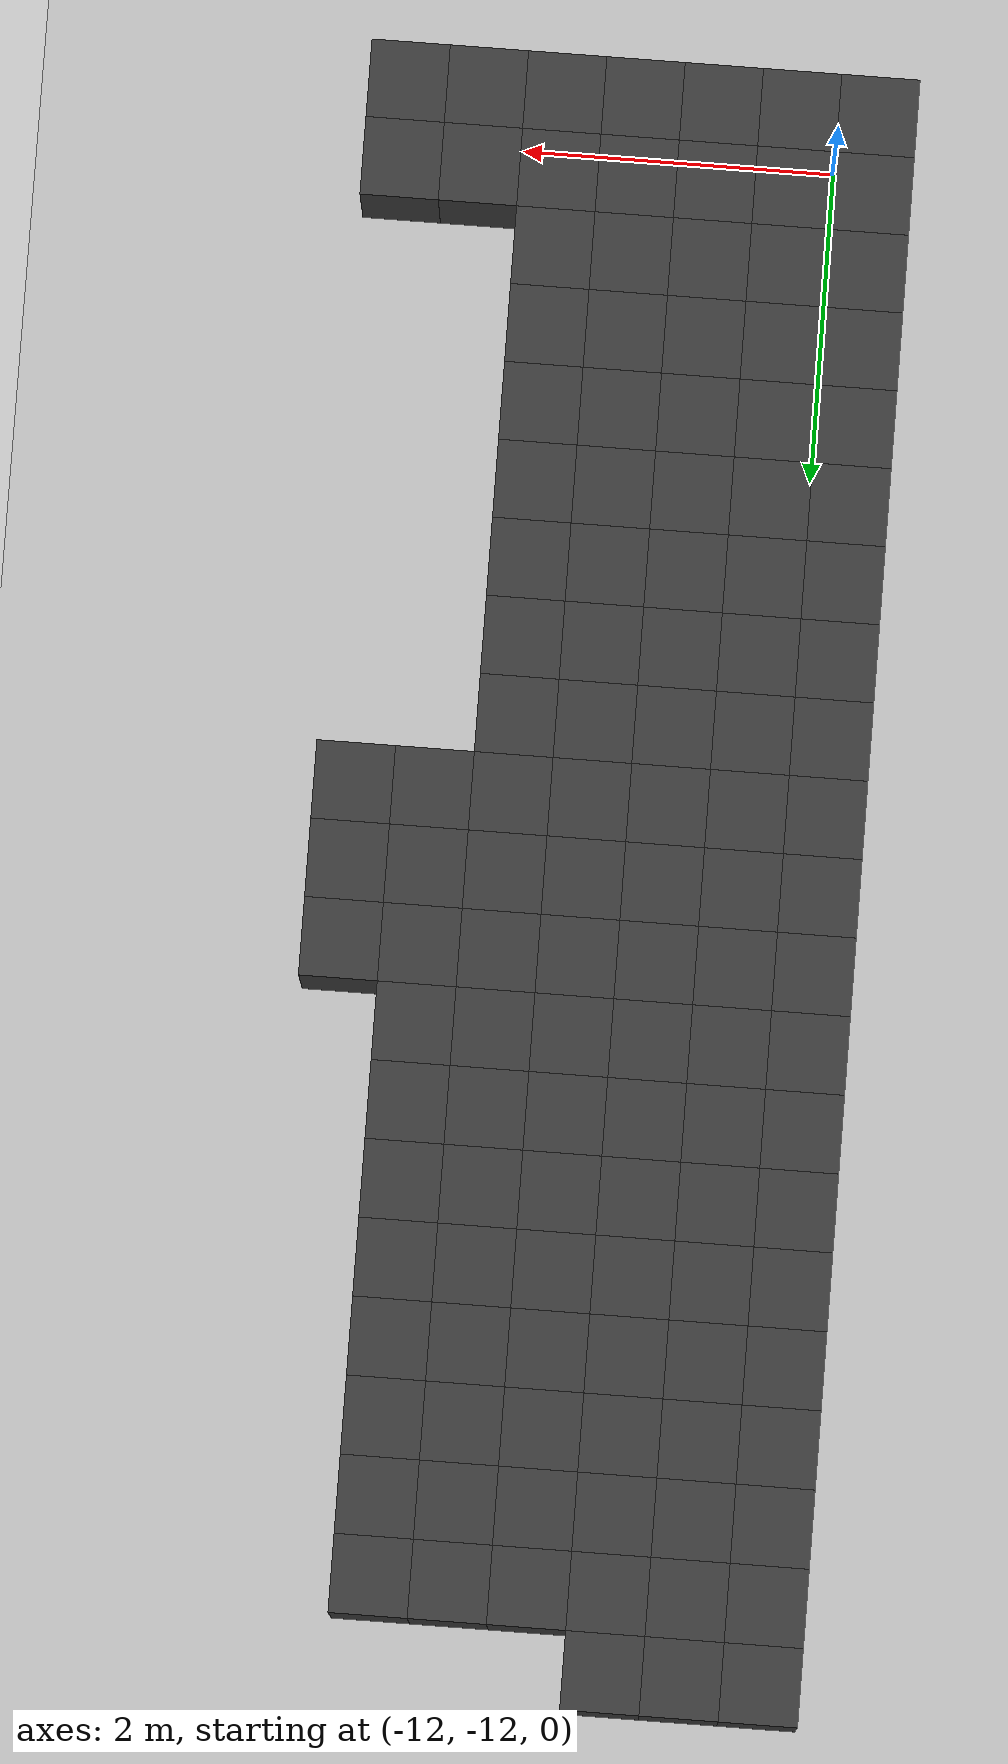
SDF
<sdf version="1.7">
 <world name="map_14706">
  <model name="ground_plane">
   <static>true</static>
   <link name="link">
    <collision name="collision">
     <geometry><plane><normal>0 0 1</normal><size>200 200</size></plane></geometry>
    </collision>
    <visual name="visual">
     <geometry><plane><normal>0 0 1</normal><size>200 200</size></plane></geometry>
     <material><ambient>0.8 0.8 0.8 1</ambient><diffuse>0.8 0.8 0.8 1</diffuse></material>
    </visual>
   </link>
  </model>
  <model name="maze_environment">
   <static>true</static>
   <link name="wall_983">
    <pose>-12.250 -2.250 0.500 0 0 0</pose>
    <collision name="col"><geometry><box><size>0.5 0.5 1.0</size></box></geometry></collision>
    <visual name="vis">
     <geometry><box><size>0.5 0.5 1.0</size></box></geometry>
     <material><ambient>0.15 0.15 0.15 1</ambient><diffuse>0.25 0.25 0.25 1</diffuse></material>
    </visual>
   </link>
   <link name="wall_984">
    <pose>-11.750 -2.250 0.500 0 0 0</pose>
    <collision name="col"><geometry><box><size>0.5 0.5 1.0</size></box></geometry></collision>
    <visual name="vis">
     <geometry><box><size>0.5 0.5 1.0</size></box></geometry>
     <material><ambient>0.15 0.15 0.15 1</ambient><diffuse>0.25 0.25 0.25 1</diffuse></material>
    </visual>
   </link>
   <link name="wall_985">
    <pose>-11.250 -2.250 0.500 0 0 0</pose>
    <collision name="col"><geometry><box><size>0.5 0.5 1.0</size></box></geometry></collision>
    <visual name="vis">
     <geometry><box><size>0.5 0.5 1.0</size></box></geometry>
     <material><ambient>0.15 0.15 0.15 1</ambient><diffuse>0.25 0.25 0.25 1</diffuse></material>
    </visual>
   </link>
   <link name="wall_1025">
    <pose>-12.250 -2.750 0.500 0 0 0</pose>
    <collision name="col"><geometry><box><size>0.5 0.5 1.0</size></box></geometry></collision>
    <visual name="vis">
     <geometry><box><size>0.5 0.5 1.0</size></box></geometry>
     <material><ambient>0.15 0.15 0.15 1</ambient><diffuse>0.25 0.25 0.25 1</diffuse></material>
    </visual>
   </link>
   <link name="wall_1026">
    <pose>-11.750 -2.750 0.500 0 0 0</pose>
    <collision name="col"><geometry><box><size>0.5 0.5 1.0</size></box></geometry></collision>
    <visual name="vis">
     <geometry><box><size>0.5 0.5 1.0</size></box></geometry>
     <material><ambient>0.15 0.15 0.15 1</ambient><diffuse>0.25 0.25 0.25 1</diffuse></material>
    </visual>
   </link>
   <link name="wall_1027">
    <pose>-11.250 -2.750 0.500 0 0 0</pose>
    <collision name="col"><geometry><box><size>0.5 0.5 1.0</size></box></geometry></collision>
    <visual name="vis">
     <geometry><box><size>0.5 0.5 1.0</size></box></geometry>
     <material><ambient>0.15 0.15 0.15 1</ambient><diffuse>0.25 0.25 0.25 1</diffuse></material>
    </visual>
   </link>
   <link name="wall_1028">
    <pose>-10.750 -2.750 0.500 0 0 0</pose>
    <collision name="col"><geometry><box><size>0.5 0.5 1.0</size></box></geometry></collision>
    <visual name="vis">
     <geometry><box><size>0.5 0.5 1.0</size></box></geometry>
     <material><ambient>0.15 0.15 0.15 1</ambient><diffuse>0.25 0.25 0.25 1</diffuse></material>
    </visual>
   </link>
   <link name="wall_1029">
    <pose>-10.250 -2.750 0.500 0 0 0</pose>
    <collision name="col"><geometry><box><size>0.5 0.5 1.0</size></box></geometry></collision>
    <visual name="vis">
     <geometry><box><size>0.5 0.5 1.0</size></box></geometry>
     <material><ambient>0.15 0.15 0.15 1</ambient><diffuse>0.25 0.25 0.25 1</diffuse></material>
    </visual>
   </link>
   <link name="wall_1030">
    <pose>-9.750 -2.750 0.500 0 0 0</pose>
    <collision name="col"><geometry><box><size>0.5 0.5 1.0</size></box></geometry></collision>
    <visual name="vis">
     <geometry><box><size>0.5 0.5 1.0</size></box></geometry>
     <material><ambient>0.15 0.15 0.15 1</ambient><diffuse>0.25 0.25 0.25 1</diffuse></material>
    </visual>
   </link>
   <link name="wall_1067">
    <pose>-12.250 -3.250 0.500 0 0 0</pose>
    <collision name="col"><geometry><box><size>0.5 0.5 1.0</size></box></geometry></collision>
    <visual name="vis">
     <geometry><box><size>0.5 0.5 1.0</size></box></geometry>
     <material><ambient>0.15 0.15 0.15 1</ambient><diffuse>0.25 0.25 0.25 1</diffuse></material>
    </visual>
   </link>
   <link name="wall_1068">
    <pose>-11.750 -3.250 0.500 0 0 0</pose>
    <collision name="col"><geometry><box><size>0.5 0.5 1.0</size></box></geometry></collision>
    <visual name="vis">
     <geometry><box><size>0.5 0.5 1.0</size></box></geometry>
     <material><ambient>0.15 0.15 0.15 1</ambient><diffuse>0.25 0.25 0.25 1</diffuse></material>
    </visual>
   </link>
   <link name="wall_1069">
    <pose>-11.250 -3.250 0.500 0 0 0</pose>
    <collision name="col"><geometry><box><size>0.5 0.5 1.0</size></box></geometry></collision>
    <visual name="vis">
     <geometry><box><size>0.5 0.5 1.0</size></box></geometry>
     <material><ambient>0.15 0.15 0.15 1</ambient><diffuse>0.25 0.25 0.25 1</diffuse></material>
    </visual>
   </link>
   <link name="wall_1070">
    <pose>-10.750 -3.250 0.500 0 0 0</pose>
    <collision name="col"><geometry><box><size>0.5 0.5 1.0</size></box></geometry></collision>
    <visual name="vis">
     <geometry><box><size>0.5 0.5 1.0</size></box></geometry>
     <material><ambient>0.15 0.15 0.15 1</ambient><diffuse>0.25 0.25 0.25 1</diffuse></material>
    </visual>
   </link>
   <link name="wall_1071">
    <pose>-10.250 -3.250 0.500 0 0 0</pose>
    <collision name="col"><geometry><box><size>0.5 0.5 1.0</size></box></geometry></collision>
    <visual name="vis">
     <geometry><box><size>0.5 0.5 1.0</size></box></geometry>
     <material><ambient>0.15 0.15 0.15 1</ambient><diffuse>0.25 0.25 0.25 1</diffuse></material>
    </visual>
   </link>
   <link name="wall_1072">
    <pose>-9.750 -3.250 0.500 0 0 0</pose>
    <collision name="col"><geometry><box><size>0.5 0.5 1.0</size></box></geometry></collision>
    <visual name="vis">
     <geometry><box><size>0.5 0.5 1.0</size></box></geometry>
     <material><ambient>0.15 0.15 0.15 1</ambient><diffuse>0.25 0.25 0.25 1</diffuse></material>
    </visual>
   </link>
   <link name="wall_1110">
    <pose>-12.250 -3.750 0.500 0 0 0</pose>
    <collision name="col"><geometry><box><size>0.5 0.5 1.0</size></box></geometry></collision>
    <visual name="vis">
     <geometry><box><size>0.5 0.5 1.0</size></box></geometry>
     <material><ambient>0.15 0.15 0.15 1</ambient><diffuse>0.25 0.25 0.25 1</diffuse></material>
    </visual>
   </link>
   <link name="wall_1111">
    <pose>-11.750 -3.750 0.500 0 0 0</pose>
    <collision name="col"><geometry><box><size>0.5 0.5 1.0</size></box></geometry></collision>
    <visual name="vis">
     <geometry><box><size>0.5 0.5 1.0</size></box></geometry>
     <material><ambient>0.15 0.15 0.15 1</ambient><diffuse>0.25 0.25 0.25 1</diffuse></material>
    </visual>
   </link>
   <link name="wall_1112">
    <pose>-11.250 -3.750 0.500 0 0 0</pose>
    <collision name="col"><geometry><box><size>0.5 0.5 1.0</size></box></geometry></collision>
    <visual name="vis">
     <geometry><box><size>0.5 0.5 1.0</size></box></geometry>
     <material><ambient>0.15 0.15 0.15 1</ambient><diffuse>0.25 0.25 0.25 1</diffuse></material>
    </visual>
   </link>
   <link name="wall_1113">
    <pose>-10.750 -3.750 0.500 0 0 0</pose>
    <collision name="col"><geometry><box><size>0.5 0.5 1.0</size></box></geometry></collision>
    <visual name="vis">
     <geometry><box><size>0.5 0.5 1.0</size></box></geometry>
     <material><ambient>0.15 0.15 0.15 1</ambient><diffuse>0.25 0.25 0.25 1</diffuse></material>
    </visual>
   </link>
   <link name="wall_1114">
    <pose>-10.250 -3.750 0.500 0 0 0</pose>
    <collision name="col"><geometry><box><size>0.5 0.5 1.0</size></box></geometry></collision>
    <visual name="vis">
     <geometry><box><size>0.5 0.5 1.0</size></box></geometry>
     <material><ambient>0.15 0.15 0.15 1</ambient><diffuse>0.25 0.25 0.25 1</diffuse></material>
    </visual>
   </link>
   <link name="wall_1115">
    <pose>-9.750 -3.750 0.500 0 0 0</pose>
    <collision name="col"><geometry><box><size>0.5 0.5 1.0</size></box></geometry></collision>
    <visual name="vis">
     <geometry><box><size>0.5 0.5 1.0</size></box></geometry>
     <material><ambient>0.15 0.15 0.15 1</ambient><diffuse>0.25 0.25 0.25 1</diffuse></material>
    </visual>
   </link>
   <link name="wall_1153">
    <pose>-12.250 -4.250 0.500 0 0 0</pose>
    <collision name="col"><geometry><box><size>0.5 0.5 1.0</size></box></geometry></collision>
    <visual name="vis">
     <geometry><box><size>0.5 0.5 1.0</size></box></geometry>
     <material><ambient>0.15 0.15 0.15 1</ambient><diffuse>0.25 0.25 0.25 1</diffuse></material>
    </visual>
   </link>
   <link name="wall_1154">
    <pose>-11.750 -4.250 0.500 0 0 0</pose>
    <collision name="col"><geometry><box><size>0.5 0.5 1.0</size></box></geometry></collision>
    <visual name="vis">
     <geometry><box><size>0.5 0.5 1.0</size></box></geometry>
     <material><ambient>0.15 0.15 0.15 1</ambient><diffuse>0.25 0.25 0.25 1</diffuse></material>
    </visual>
   </link>
   <link name="wall_1155">
    <pose>-11.250 -4.250 0.500 0 0 0</pose>
    <collision name="col"><geometry><box><size>0.5 0.5 1.0</size></box></geometry></collision>
    <visual name="vis">
     <geometry><box><size>0.5 0.5 1.0</size></box></geometry>
     <material><ambient>0.15 0.15 0.15 1</ambient><diffuse>0.25 0.25 0.25 1</diffuse></material>
    </visual>
   </link>
   <link name="wall_1156">
    <pose>-10.750 -4.250 0.500 0 0 0</pose>
    <collision name="col"><geometry><box><size>0.5 0.5 1.0</size></box></geometry></collision>
    <visual name="vis">
     <geometry><box><size>0.5 0.5 1.0</size></box></geometry>
     <material><ambient>0.15 0.15 0.15 1</ambient><diffuse>0.25 0.25 0.25 1</diffuse></material>
    </visual>
   </link>
   <link name="wall_1157">
    <pose>-10.250 -4.250 0.500 0 0 0</pose>
    <collision name="col"><geometry><box><size>0.5 0.5 1.0</size></box></geometry></collision>
    <visual name="vis">
     <geometry><box><size>0.5 0.5 1.0</size></box></geometry>
     <material><ambient>0.15 0.15 0.15 1</ambient><diffuse>0.25 0.25 0.25 1</diffuse></material>
    </visual>
   </link>
   <link name="wall_1158">
    <pose>-9.750 -4.250 0.500 0 0 0</pose>
    <collision name="col"><geometry><box><size>0.5 0.5 1.0</size></box></geometry></collision>
    <visual name="vis">
     <geometry><box><size>0.5 0.5 1.0</size></box></geometry>
     <material><ambient>0.15 0.15 0.15 1</ambient><diffuse>0.25 0.25 0.25 1</diffuse></material>
    </visual>
   </link>
   <link name="wall_1196">
    <pose>-12.250 -4.750 0.500 0 0 0</pose>
    <collision name="col"><geometry><box><size>0.5 0.5 1.0</size></box></geometry></collision>
    <visual name="vis">
     <geometry><box><size>0.5 0.5 1.0</size></box></geometry>
     <material><ambient>0.15 0.15 0.15 1</ambient><diffuse>0.25 0.25 0.25 1</diffuse></material>
    </visual>
   </link>
   <link name="wall_1197">
    <pose>-11.750 -4.750 0.500 0 0 0</pose>
    <collision name="col"><geometry><box><size>0.5 0.5 1.0</size></box></geometry></collision>
    <visual name="vis">
     <geometry><box><size>0.5 0.5 1.0</size></box></geometry>
     <material><ambient>0.15 0.15 0.15 1</ambient><diffuse>0.25 0.25 0.25 1</diffuse></material>
    </visual>
   </link>
   <link name="wall_1198">
    <pose>-11.250 -4.750 0.500 0 0 0</pose>
    <collision name="col"><geometry><box><size>0.5 0.5 1.0</size></box></geometry></collision>
    <visual name="vis">
     <geometry><box><size>0.5 0.5 1.0</size></box></geometry>
     <material><ambient>0.15 0.15 0.15 1</ambient><diffuse>0.25 0.25 0.25 1</diffuse></material>
    </visual>
   </link>
   <link name="wall_1199">
    <pose>-10.750 -4.750 0.500 0 0 0</pose>
    <collision name="col"><geometry><box><size>0.5 0.5 1.0</size></box></geometry></collision>
    <visual name="vis">
     <geometry><box><size>0.5 0.5 1.0</size></box></geometry>
     <material><ambient>0.15 0.15 0.15 1</ambient><diffuse>0.25 0.25 0.25 1</diffuse></material>
    </visual>
   </link>
   <link name="wall_1200">
    <pose>-10.250 -4.750 0.500 0 0 0</pose>
    <collision name="col"><geometry><box><size>0.5 0.5 1.0</size></box></geometry></collision>
    <visual name="vis">
     <geometry><box><size>0.5 0.5 1.0</size></box></geometry>
     <material><ambient>0.15 0.15 0.15 1</ambient><diffuse>0.25 0.25 0.25 1</diffuse></material>
    </visual>
   </link>
   <link name="wall_1201">
    <pose>-9.750 -4.750 0.500 0 0 0</pose>
    <collision name="col"><geometry><box><size>0.5 0.5 1.0</size></box></geometry></collision>
    <visual name="vis">
     <geometry><box><size>0.5 0.5 1.0</size></box></geometry>
     <material><ambient>0.15 0.15 0.15 1</ambient><diffuse>0.25 0.25 0.25 1</diffuse></material>
    </visual>
   </link>
   <link name="wall_1232">
    <pose>-12.250 -5.250 0.500 0 0 0</pose>
    <collision name="col"><geometry><box><size>0.5 0.5 1.0</size></box></geometry></collision>
    <visual name="vis">
     <geometry><box><size>0.5 0.5 1.0</size></box></geometry>
     <material><ambient>0.15 0.15 0.15 1</ambient><diffuse>0.25 0.25 0.25 1</diffuse></material>
    </visual>
   </link>
   <link name="wall_1233">
    <pose>-11.750 -5.250 0.500 0 0 0</pose>
    <collision name="col"><geometry><box><size>0.5 0.5 1.0</size></box></geometry></collision>
    <visual name="vis">
     <geometry><box><size>0.5 0.5 1.0</size></box></geometry>
     <material><ambient>0.15 0.15 0.15 1</ambient><diffuse>0.25 0.25 0.25 1</diffuse></material>
    </visual>
   </link>
   <link name="wall_1234">
    <pose>-11.250 -5.250 0.500 0 0 0</pose>
    <collision name="col"><geometry><box><size>0.5 0.5 1.0</size></box></geometry></collision>
    <visual name="vis">
     <geometry><box><size>0.5 0.5 1.0</size></box></geometry>
     <material><ambient>0.15 0.15 0.15 1</ambient><diffuse>0.25 0.25 0.25 1</diffuse></material>
    </visual>
   </link>
   <link name="wall_1235">
    <pose>-10.750 -5.250 0.500 0 0 0</pose>
    <collision name="col"><geometry><box><size>0.5 0.5 1.0</size></box></geometry></collision>
    <visual name="vis">
     <geometry><box><size>0.5 0.5 1.0</size></box></geometry>
     <material><ambient>0.15 0.15 0.15 1</ambient><diffuse>0.25 0.25 0.25 1</diffuse></material>
    </visual>
   </link>
   <link name="wall_1236">
    <pose>-10.250 -5.250 0.500 0 0 0</pose>
    <collision name="col"><geometry><box><size>0.5 0.5 1.0</size></box></geometry></collision>
    <visual name="vis">
     <geometry><box><size>0.5 0.5 1.0</size></box></geometry>
     <material><ambient>0.15 0.15 0.15 1</ambient><diffuse>0.25 0.25 0.25 1</diffuse></material>
    </visual>
   </link>
   <link name="wall_1237">
    <pose>-9.750 -5.250 0.500 0 0 0</pose>
    <collision name="col"><geometry><box><size>0.5 0.5 1.0</size></box></geometry></collision>
    <visual name="vis">
     <geometry><box><size>0.5 0.5 1.0</size></box></geometry>
     <material><ambient>0.15 0.15 0.15 1</ambient><diffuse>0.25 0.25 0.25 1</diffuse></material>
    </visual>
   </link>
   <link name="wall_1269">
    <pose>-12.250 -5.750 0.500 0 0 0</pose>
    <collision name="col"><geometry><box><size>0.5 0.5 1.0</size></box></geometry></collision>
    <visual name="vis">
     <geometry><box><size>0.5 0.5 1.0</size></box></geometry>
     <material><ambient>0.15 0.15 0.15 1</ambient><diffuse>0.25 0.25 0.25 1</diffuse></material>
    </visual>
   </link>
   <link name="wall_1270">
    <pose>-11.750 -5.750 0.500 0 0 0</pose>
    <collision name="col"><geometry><box><size>0.5 0.5 1.0</size></box></geometry></collision>
    <visual name="vis">
     <geometry><box><size>0.5 0.5 1.0</size></box></geometry>
     <material><ambient>0.15 0.15 0.15 1</ambient><diffuse>0.25 0.25 0.25 1</diffuse></material>
    </visual>
   </link>
   <link name="wall_1271">
    <pose>-11.250 -5.750 0.500 0 0 0</pose>
    <collision name="col"><geometry><box><size>0.5 0.5 1.0</size></box></geometry></collision>
    <visual name="vis">
     <geometry><box><size>0.5 0.5 1.0</size></box></geometry>
     <material><ambient>0.15 0.15 0.15 1</ambient><diffuse>0.25 0.25 0.25 1</diffuse></material>
    </visual>
   </link>
   <link name="wall_1272">
    <pose>-10.750 -5.750 0.500 0 0 0</pose>
    <collision name="col"><geometry><box><size>0.5 0.5 1.0</size></box></geometry></collision>
    <visual name="vis">
     <geometry><box><size>0.5 0.5 1.0</size></box></geometry>
     <material><ambient>0.15 0.15 0.15 1</ambient><diffuse>0.25 0.25 0.25 1</diffuse></material>
    </visual>
   </link>
   <link name="wall_1273">
    <pose>-10.250 -5.750 0.500 0 0 0</pose>
    <collision name="col"><geometry><box><size>0.5 0.5 1.0</size></box></geometry></collision>
    <visual name="vis">
     <geometry><box><size>0.5 0.5 1.0</size></box></geometry>
     <material><ambient>0.15 0.15 0.15 1</ambient><diffuse>0.25 0.25 0.25 1</diffuse></material>
    </visual>
   </link>
   <link name="wall_1274">
    <pose>-9.750 -5.750 0.500 0 0 0</pose>
    <collision name="col"><geometry><box><size>0.5 0.5 1.0</size></box></geometry></collision>
    <visual name="vis">
     <geometry><box><size>0.5 0.5 1.0</size></box></geometry>
     <material><ambient>0.15 0.15 0.15 1</ambient><diffuse>0.25 0.25 0.25 1</diffuse></material>
    </visual>
   </link>
   <link name="wall_1306">
    <pose>-12.250 -6.250 0.500 0 0 0</pose>
    <collision name="col"><geometry><box><size>0.5 0.5 1.0</size></box></geometry></collision>
    <visual name="vis">
     <geometry><box><size>0.5 0.5 1.0</size></box></geometry>
     <material><ambient>0.15 0.15 0.15 1</ambient><diffuse>0.25 0.25 0.25 1</diffuse></material>
    </visual>
   </link>
   <link name="wall_1307">
    <pose>-11.750 -6.250 0.500 0 0 0</pose>
    <collision name="col"><geometry><box><size>0.5 0.5 1.0</size></box></geometry></collision>
    <visual name="vis">
     <geometry><box><size>0.5 0.5 1.0</size></box></geometry>
     <material><ambient>0.15 0.15 0.15 1</ambient><diffuse>0.25 0.25 0.25 1</diffuse></material>
    </visual>
   </link>
   <link name="wall_1308">
    <pose>-11.250 -6.250 0.500 0 0 0</pose>
    <collision name="col"><geometry><box><size>0.5 0.5 1.0</size></box></geometry></collision>
    <visual name="vis">
     <geometry><box><size>0.5 0.5 1.0</size></box></geometry>
     <material><ambient>0.15 0.15 0.15 1</ambient><diffuse>0.25 0.25 0.25 1</diffuse></material>
    </visual>
   </link>
   <link name="wall_1309">
    <pose>-10.750 -6.250 0.500 0 0 0</pose>
    <collision name="col"><geometry><box><size>0.5 0.5 1.0</size></box></geometry></collision>
    <visual name="vis">
     <geometry><box><size>0.5 0.5 1.0</size></box></geometry>
     <material><ambient>0.15 0.15 0.15 1</ambient><diffuse>0.25 0.25 0.25 1</diffuse></material>
    </visual>
   </link>
   <link name="wall_1310">
    <pose>-10.250 -6.250 0.500 0 0 0</pose>
    <collision name="col"><geometry><box><size>0.5 0.5 1.0</size></box></geometry></collision>
    <visual name="vis">
     <geometry><box><size>0.5 0.5 1.0</size></box></geometry>
     <material><ambient>0.15 0.15 0.15 1</ambient><diffuse>0.25 0.25 0.25 1</diffuse></material>
    </visual>
   </link>
   <link name="wall_1311">
    <pose>-9.750 -6.250 0.500 0 0 0</pose>
    <collision name="col"><geometry><box><size>0.5 0.5 1.0</size></box></geometry></collision>
    <visual name="vis">
     <geometry><box><size>0.5 0.5 1.0</size></box></geometry>
     <material><ambient>0.15 0.15 0.15 1</ambient><diffuse>0.25 0.25 0.25 1</diffuse></material>
    </visual>
   </link>
   <link name="wall_1342">
    <pose>-12.250 -6.750 0.500 0 0 0</pose>
    <collision name="col"><geometry><box><size>0.5 0.5 1.0</size></box></geometry></collision>
    <visual name="vis">
     <geometry><box><size>0.5 0.5 1.0</size></box></geometry>
     <material><ambient>0.15 0.15 0.15 1</ambient><diffuse>0.25 0.25 0.25 1</diffuse></material>
    </visual>
   </link>
   <link name="wall_1343">
    <pose>-11.750 -6.750 0.500 0 0 0</pose>
    <collision name="col"><geometry><box><size>0.5 0.5 1.0</size></box></geometry></collision>
    <visual name="vis">
     <geometry><box><size>0.5 0.5 1.0</size></box></geometry>
     <material><ambient>0.15 0.15 0.15 1</ambient><diffuse>0.25 0.25 0.25 1</diffuse></material>
    </visual>
   </link>
   <link name="wall_1344">
    <pose>-11.250 -6.750 0.500 0 0 0</pose>
    <collision name="col"><geometry><box><size>0.5 0.5 1.0</size></box></geometry></collision>
    <visual name="vis">
     <geometry><box><size>0.5 0.5 1.0</size></box></geometry>
     <material><ambient>0.15 0.15 0.15 1</ambient><diffuse>0.25 0.25 0.25 1</diffuse></material>
    </visual>
   </link>
   <link name="wall_1345">
    <pose>-10.750 -6.750 0.500 0 0 0</pose>
    <collision name="col"><geometry><box><size>0.5 0.5 1.0</size></box></geometry></collision>
    <visual name="vis">
     <geometry><box><size>0.5 0.5 1.0</size></box></geometry>
     <material><ambient>0.15 0.15 0.15 1</ambient><diffuse>0.25 0.25 0.25 1</diffuse></material>
    </visual>
   </link>
   <link name="wall_1346">
    <pose>-10.250 -6.750 0.500 0 0 0</pose>
    <collision name="col"><geometry><box><size>0.5 0.5 1.0</size></box></geometry></collision>
    <visual name="vis">
     <geometry><box><size>0.5 0.5 1.0</size></box></geometry>
     <material><ambient>0.15 0.15 0.15 1</ambient><diffuse>0.25 0.25 0.25 1</diffuse></material>
    </visual>
   </link>
   <link name="wall_1347">
    <pose>-9.750 -6.750 0.500 0 0 0</pose>
    <collision name="col"><geometry><box><size>0.5 0.5 1.0</size></box></geometry></collision>
    <visual name="vis">
     <geometry><box><size>0.5 0.5 1.0</size></box></geometry>
     <material><ambient>0.15 0.15 0.15 1</ambient><diffuse>0.25 0.25 0.25 1</diffuse></material>
    </visual>
   </link>
   <link name="wall_1348">
    <pose>-9.250 -6.750 0.500 0 0 0</pose>
    <collision name="col"><geometry><box><size>0.5 0.5 1.0</size></box></geometry></collision>
    <visual name="vis">
     <geometry><box><size>0.5 0.5 1.0</size></box></geometry>
     <material><ambient>0.15 0.15 0.15 1</ambient><diffuse>0.25 0.25 0.25 1</diffuse></material>
    </visual>
   </link>
   <link name="wall_1384">
    <pose>-12.250 -7.250 0.500 0 0 0</pose>
    <collision name="col"><geometry><box><size>0.5 0.5 1.0</size></box></geometry></collision>
    <visual name="vis">
     <geometry><box><size>0.5 0.5 1.0</size></box></geometry>
     <material><ambient>0.15 0.15 0.15 1</ambient><diffuse>0.25 0.25 0.25 1</diffuse></material>
    </visual>
   </link>
   <link name="wall_1385">
    <pose>-11.750 -7.250 0.500 0 0 0</pose>
    <collision name="col"><geometry><box><size>0.5 0.5 1.0</size></box></geometry></collision>
    <visual name="vis">
     <geometry><box><size>0.5 0.5 1.0</size></box></geometry>
     <material><ambient>0.15 0.15 0.15 1</ambient><diffuse>0.25 0.25 0.25 1</diffuse></material>
    </visual>
   </link>
   <link name="wall_1386">
    <pose>-11.250 -7.250 0.500 0 0 0</pose>
    <collision name="col"><geometry><box><size>0.5 0.5 1.0</size></box></geometry></collision>
    <visual name="vis">
     <geometry><box><size>0.5 0.5 1.0</size></box></geometry>
     <material><ambient>0.15 0.15 0.15 1</ambient><diffuse>0.25 0.25 0.25 1</diffuse></material>
    </visual>
   </link>
   <link name="wall_1387">
    <pose>-10.750 -7.250 0.500 0 0 0</pose>
    <collision name="col"><geometry><box><size>0.5 0.5 1.0</size></box></geometry></collision>
    <visual name="vis">
     <geometry><box><size>0.5 0.5 1.0</size></box></geometry>
     <material><ambient>0.15 0.15 0.15 1</ambient><diffuse>0.25 0.25 0.25 1</diffuse></material>
    </visual>
   </link>
   <link name="wall_1388">
    <pose>-10.250 -7.250 0.500 0 0 0</pose>
    <collision name="col"><geometry><box><size>0.5 0.5 1.0</size></box></geometry></collision>
    <visual name="vis">
     <geometry><box><size>0.5 0.5 1.0</size></box></geometry>
     <material><ambient>0.15 0.15 0.15 1</ambient><diffuse>0.25 0.25 0.25 1</diffuse></material>
    </visual>
   </link>
   <link name="wall_1389">
    <pose>-9.750 -7.250 0.500 0 0 0</pose>
    <collision name="col"><geometry><box><size>0.5 0.5 1.0</size></box></geometry></collision>
    <visual name="vis">
     <geometry><box><size>0.5 0.5 1.0</size></box></geometry>
     <material><ambient>0.15 0.15 0.15 1</ambient><diffuse>0.25 0.25 0.25 1</diffuse></material>
    </visual>
   </link>
   <link name="wall_1390">
    <pose>-9.250 -7.250 0.500 0 0 0</pose>
    <collision name="col"><geometry><box><size>0.5 0.5 1.0</size></box></geometry></collision>
    <visual name="vis">
     <geometry><box><size>0.5 0.5 1.0</size></box></geometry>
     <material><ambient>0.15 0.15 0.15 1</ambient><diffuse>0.25 0.25 0.25 1</diffuse></material>
    </visual>
   </link>
   <link name="wall_1426">
    <pose>-12.250 -7.750 0.500 0 0 0</pose>
    <collision name="col"><geometry><box><size>0.5 0.5 1.0</size></box></geometry></collision>
    <visual name="vis">
     <geometry><box><size>0.5 0.5 1.0</size></box></geometry>
     <material><ambient>0.15 0.15 0.15 1</ambient><diffuse>0.25 0.25 0.25 1</diffuse></material>
    </visual>
   </link>
   <link name="wall_1427">
    <pose>-11.750 -7.750 0.500 0 0 0</pose>
    <collision name="col"><geometry><box><size>0.5 0.5 1.0</size></box></geometry></collision>
    <visual name="vis">
     <geometry><box><size>0.5 0.5 1.0</size></box></geometry>
     <material><ambient>0.15 0.15 0.15 1</ambient><diffuse>0.25 0.25 0.25 1</diffuse></material>
    </visual>
   </link>
   <link name="wall_1428">
    <pose>-11.250 -7.750 0.500 0 0 0</pose>
    <collision name="col"><geometry><box><size>0.5 0.5 1.0</size></box></geometry></collision>
    <visual name="vis">
     <geometry><box><size>0.5 0.5 1.0</size></box></geometry>
     <material><ambient>0.15 0.15 0.15 1</ambient><diffuse>0.25 0.25 0.25 1</diffuse></material>
    </visual>
   </link>
   <link name="wall_1429">
    <pose>-10.750 -7.750 0.500 0 0 0</pose>
    <collision name="col"><geometry><box><size>0.5 0.5 1.0</size></box></geometry></collision>
    <visual name="vis">
     <geometry><box><size>0.5 0.5 1.0</size></box></geometry>
     <material><ambient>0.15 0.15 0.15 1</ambient><diffuse>0.25 0.25 0.25 1</diffuse></material>
    </visual>
   </link>
   <link name="wall_1430">
    <pose>-10.250 -7.750 0.500 0 0 0</pose>
    <collision name="col"><geometry><box><size>0.5 0.5 1.0</size></box></geometry></collision>
    <visual name="vis">
     <geometry><box><size>0.5 0.5 1.0</size></box></geometry>
     <material><ambient>0.15 0.15 0.15 1</ambient><diffuse>0.25 0.25 0.25 1</diffuse></material>
    </visual>
   </link>
   <link name="wall_1431">
    <pose>-9.750 -7.750 0.500 0 0 0</pose>
    <collision name="col"><geometry><box><size>0.5 0.5 1.0</size></box></geometry></collision>
    <visual name="vis">
     <geometry><box><size>0.5 0.5 1.0</size></box></geometry>
     <material><ambient>0.15 0.15 0.15 1</ambient><diffuse>0.25 0.25 0.25 1</diffuse></material>
    </visual>
   </link>
   <link name="wall_1432">
    <pose>-9.250 -7.750 0.500 0 0 0</pose>
    <collision name="col"><geometry><box><size>0.5 0.5 1.0</size></box></geometry></collision>
    <visual name="vis">
     <geometry><box><size>0.5 0.5 1.0</size></box></geometry>
     <material><ambient>0.15 0.15 0.15 1</ambient><diffuse>0.25 0.25 0.25 1</diffuse></material>
    </visual>
   </link>
   <link name="wall_1474">
    <pose>-12.250 -8.250 0.500 0 0 0</pose>
    <collision name="col"><geometry><box><size>0.5 0.5 1.0</size></box></geometry></collision>
    <visual name="vis">
     <geometry><box><size>0.5 0.5 1.0</size></box></geometry>
     <material><ambient>0.15 0.15 0.15 1</ambient><diffuse>0.25 0.25 0.25 1</diffuse></material>
    </visual>
   </link>
   <link name="wall_1475">
    <pose>-11.750 -8.250 0.500 0 0 0</pose>
    <collision name="col"><geometry><box><size>0.5 0.5 1.0</size></box></geometry></collision>
    <visual name="vis">
     <geometry><box><size>0.5 0.5 1.0</size></box></geometry>
     <material><ambient>0.15 0.15 0.15 1</ambient><diffuse>0.25 0.25 0.25 1</diffuse></material>
    </visual>
   </link>
   <link name="wall_1476">
    <pose>-11.250 -8.250 0.500 0 0 0</pose>
    <collision name="col"><geometry><box><size>0.5 0.5 1.0</size></box></geometry></collision>
    <visual name="vis">
     <geometry><box><size>0.5 0.5 1.0</size></box></geometry>
     <material><ambient>0.15 0.15 0.15 1</ambient><diffuse>0.25 0.25 0.25 1</diffuse></material>
    </visual>
   </link>
   <link name="wall_1477">
    <pose>-10.750 -8.250 0.500 0 0 0</pose>
    <collision name="col"><geometry><box><size>0.5 0.5 1.0</size></box></geometry></collision>
    <visual name="vis">
     <geometry><box><size>0.5 0.5 1.0</size></box></geometry>
     <material><ambient>0.15 0.15 0.15 1</ambient><diffuse>0.25 0.25 0.25 1</diffuse></material>
    </visual>
   </link>
   <link name="wall_1478">
    <pose>-10.250 -8.250 0.500 0 0 0</pose>
    <collision name="col"><geometry><box><size>0.5 0.5 1.0</size></box></geometry></collision>
    <visual name="vis">
     <geometry><box><size>0.5 0.5 1.0</size></box></geometry>
     <material><ambient>0.15 0.15 0.15 1</ambient><diffuse>0.25 0.25 0.25 1</diffuse></material>
    </visual>
   </link>
   <link name="wall_1509">
    <pose>-12.250 -8.750 0.500 0 0 0</pose>
    <collision name="col"><geometry><box><size>0.5 0.5 1.0</size></box></geometry></collision>
    <visual name="vis">
     <geometry><box><size>0.5 0.5 1.0</size></box></geometry>
     <material><ambient>0.15 0.15 0.15 1</ambient><diffuse>0.25 0.25 0.25 1</diffuse></material>
    </visual>
   </link>
   <link name="wall_1510">
    <pose>-11.750 -8.750 0.500 0 0 0</pose>
    <collision name="col"><geometry><box><size>0.5 0.5 1.0</size></box></geometry></collision>
    <visual name="vis">
     <geometry><box><size>0.5 0.5 1.0</size></box></geometry>
     <material><ambient>0.15 0.15 0.15 1</ambient><diffuse>0.25 0.25 0.25 1</diffuse></material>
    </visual>
   </link>
   <link name="wall_1511">
    <pose>-11.250 -8.750 0.500 0 0 0</pose>
    <collision name="col"><geometry><box><size>0.5 0.5 1.0</size></box></geometry></collision>
    <visual name="vis">
     <geometry><box><size>0.5 0.5 1.0</size></box></geometry>
     <material><ambient>0.15 0.15 0.15 1</ambient><diffuse>0.25 0.25 0.25 1</diffuse></material>
    </visual>
   </link>
   <link name="wall_1512">
    <pose>-10.750 -8.750 0.500 0 0 0</pose>
    <collision name="col"><geometry><box><size>0.5 0.5 1.0</size></box></geometry></collision>
    <visual name="vis">
     <geometry><box><size>0.5 0.5 1.0</size></box></geometry>
     <material><ambient>0.15 0.15 0.15 1</ambient><diffuse>0.25 0.25 0.25 1</diffuse></material>
    </visual>
   </link>
   <link name="wall_1513">
    <pose>-10.250 -8.750 0.500 0 0 0</pose>
    <collision name="col"><geometry><box><size>0.5 0.5 1.0</size></box></geometry></collision>
    <visual name="vis">
     <geometry><box><size>0.5 0.5 1.0</size></box></geometry>
     <material><ambient>0.15 0.15 0.15 1</ambient><diffuse>0.25 0.25 0.25 1</diffuse></material>
    </visual>
   </link>
   <link name="wall_1544">
    <pose>-12.250 -9.250 0.500 0 0 0</pose>
    <collision name="col"><geometry><box><size>0.5 0.5 1.0</size></box></geometry></collision>
    <visual name="vis">
     <geometry><box><size>0.5 0.5 1.0</size></box></geometry>
     <material><ambient>0.15 0.15 0.15 1</ambient><diffuse>0.25 0.25 0.25 1</diffuse></material>
    </visual>
   </link>
   <link name="wall_1545">
    <pose>-11.750 -9.250 0.500 0 0 0</pose>
    <collision name="col"><geometry><box><size>0.5 0.5 1.0</size></box></geometry></collision>
    <visual name="vis">
     <geometry><box><size>0.5 0.5 1.0</size></box></geometry>
     <material><ambient>0.15 0.15 0.15 1</ambient><diffuse>0.25 0.25 0.25 1</diffuse></material>
    </visual>
   </link>
   <link name="wall_1546">
    <pose>-11.250 -9.250 0.500 0 0 0</pose>
    <collision name="col"><geometry><box><size>0.5 0.5 1.0</size></box></geometry></collision>
    <visual name="vis">
     <geometry><box><size>0.5 0.5 1.0</size></box></geometry>
     <material><ambient>0.15 0.15 0.15 1</ambient><diffuse>0.25 0.25 0.25 1</diffuse></material>
    </visual>
   </link>
   <link name="wall_1547">
    <pose>-10.750 -9.250 0.500 0 0 0</pose>
    <collision name="col"><geometry><box><size>0.5 0.5 1.0</size></box></geometry></collision>
    <visual name="vis">
     <geometry><box><size>0.5 0.5 1.0</size></box></geometry>
     <material><ambient>0.15 0.15 0.15 1</ambient><diffuse>0.25 0.25 0.25 1</diffuse></material>
    </visual>
   </link>
   <link name="wall_1548">
    <pose>-10.250 -9.250 0.500 0 0 0</pose>
    <collision name="col"><geometry><box><size>0.5 0.5 1.0</size></box></geometry></collision>
    <visual name="vis">
     <geometry><box><size>0.5 0.5 1.0</size></box></geometry>
     <material><ambient>0.15 0.15 0.15 1</ambient><diffuse>0.25 0.25 0.25 1</diffuse></material>
    </visual>
   </link>
   <link name="wall_1579">
    <pose>-12.250 -9.750 0.500 0 0 0</pose>
    <collision name="col"><geometry><box><size>0.5 0.5 1.0</size></box></geometry></collision>
    <visual name="vis">
     <geometry><box><size>0.5 0.5 1.0</size></box></geometry>
     <material><ambient>0.15 0.15 0.15 1</ambient><diffuse>0.25 0.25 0.25 1</diffuse></material>
    </visual>
   </link>
   <link name="wall_1580">
    <pose>-11.750 -9.750 0.500 0 0 0</pose>
    <collision name="col"><geometry><box><size>0.5 0.5 1.0</size></box></geometry></collision>
    <visual name="vis">
     <geometry><box><size>0.5 0.5 1.0</size></box></geometry>
     <material><ambient>0.15 0.15 0.15 1</ambient><diffuse>0.25 0.25 0.25 1</diffuse></material>
    </visual>
   </link>
   <link name="wall_1581">
    <pose>-11.250 -9.750 0.500 0 0 0</pose>
    <collision name="col"><geometry><box><size>0.5 0.5 1.0</size></box></geometry></collision>
    <visual name="vis">
     <geometry><box><size>0.5 0.5 1.0</size></box></geometry>
     <material><ambient>0.15 0.15 0.15 1</ambient><diffuse>0.25 0.25 0.25 1</diffuse></material>
    </visual>
   </link>
   <link name="wall_1582">
    <pose>-10.750 -9.750 0.500 0 0 0</pose>
    <collision name="col"><geometry><box><size>0.5 0.5 1.0</size></box></geometry></collision>
    <visual name="vis">
     <geometry><box><size>0.5 0.5 1.0</size></box></geometry>
     <material><ambient>0.15 0.15 0.15 1</ambient><diffuse>0.25 0.25 0.25 1</diffuse></material>
    </visual>
   </link>
   <link name="wall_1583">
    <pose>-10.250 -9.750 0.500 0 0 0</pose>
    <collision name="col"><geometry><box><size>0.5 0.5 1.0</size></box></geometry></collision>
    <visual name="vis">
     <geometry><box><size>0.5 0.5 1.0</size></box></geometry>
     <material><ambient>0.15 0.15 0.15 1</ambient><diffuse>0.25 0.25 0.25 1</diffuse></material>
    </visual>
   </link>
   <link name="wall_1612">
    <pose>-12.250 -10.250 0.500 0 0 0</pose>
    <collision name="col"><geometry><box><size>0.5 0.5 1.0</size></box></geometry></collision>
    <visual name="vis">
     <geometry><box><size>0.5 0.5 1.0</size></box></geometry>
     <material><ambient>0.15 0.15 0.15 1</ambient><diffuse>0.25 0.25 0.25 1</diffuse></material>
    </visual>
   </link>
   <link name="wall_1613">
    <pose>-11.750 -10.250 0.500 0 0 0</pose>
    <collision name="col"><geometry><box><size>0.5 0.5 1.0</size></box></geometry></collision>
    <visual name="vis">
     <geometry><box><size>0.5 0.5 1.0</size></box></geometry>
     <material><ambient>0.15 0.15 0.15 1</ambient><diffuse>0.25 0.25 0.25 1</diffuse></material>
    </visual>
   </link>
   <link name="wall_1614">
    <pose>-11.250 -10.250 0.500 0 0 0</pose>
    <collision name="col"><geometry><box><size>0.5 0.5 1.0</size></box></geometry></collision>
    <visual name="vis">
     <geometry><box><size>0.5 0.5 1.0</size></box></geometry>
     <material><ambient>0.15 0.15 0.15 1</ambient><diffuse>0.25 0.25 0.25 1</diffuse></material>
    </visual>
   </link>
   <link name="wall_1615">
    <pose>-10.750 -10.250 0.500 0 0 0</pose>
    <collision name="col"><geometry><box><size>0.5 0.5 1.0</size></box></geometry></collision>
    <visual name="vis">
     <geometry><box><size>0.5 0.5 1.0</size></box></geometry>
     <material><ambient>0.15 0.15 0.15 1</ambient><diffuse>0.25 0.25 0.25 1</diffuse></material>
    </visual>
   </link>
   <link name="wall_1616">
    <pose>-10.250 -10.250 0.500 0 0 0</pose>
    <collision name="col"><geometry><box><size>0.5 0.5 1.0</size></box></geometry></collision>
    <visual name="vis">
     <geometry><box><size>0.5 0.5 1.0</size></box></geometry>
     <material><ambient>0.15 0.15 0.15 1</ambient><diffuse>0.25 0.25 0.25 1</diffuse></material>
    </visual>
   </link>
   <link name="wall_1648">
    <pose>-12.250 -10.750 0.500 0 0 0</pose>
    <collision name="col"><geometry><box><size>0.5 0.5 1.0</size></box></geometry></collision>
    <visual name="vis">
     <geometry><box><size>0.5 0.5 1.0</size></box></geometry>
     <material><ambient>0.15 0.15 0.15 1</ambient><diffuse>0.25 0.25 0.25 1</diffuse></material>
    </visual>
   </link>
   <link name="wall_1649">
    <pose>-11.750 -10.750 0.500 0 0 0</pose>
    <collision name="col"><geometry><box><size>0.5 0.5 1.0</size></box></geometry></collision>
    <visual name="vis">
     <geometry><box><size>0.5 0.5 1.0</size></box></geometry>
     <material><ambient>0.15 0.15 0.15 1</ambient><diffuse>0.25 0.25 0.25 1</diffuse></material>
    </visual>
   </link>
   <link name="wall_1650">
    <pose>-11.250 -10.750 0.500 0 0 0</pose>
    <collision name="col"><geometry><box><size>0.5 0.5 1.0</size></box></geometry></collision>
    <visual name="vis">
     <geometry><box><size>0.5 0.5 1.0</size></box></geometry>
     <material><ambient>0.15 0.15 0.15 1</ambient><diffuse>0.25 0.25 0.25 1</diffuse></material>
    </visual>
   </link>
   <link name="wall_1651">
    <pose>-10.750 -10.750 0.500 0 0 0</pose>
    <collision name="col"><geometry><box><size>0.5 0.5 1.0</size></box></geometry></collision>
    <visual name="vis">
     <geometry><box><size>0.5 0.5 1.0</size></box></geometry>
     <material><ambient>0.15 0.15 0.15 1</ambient><diffuse>0.25 0.25 0.25 1</diffuse></material>
    </visual>
   </link>
   <link name="wall_1652">
    <pose>-10.250 -10.750 0.500 0 0 0</pose>
    <collision name="col"><geometry><box><size>0.5 0.5 1.0</size></box></geometry></collision>
    <visual name="vis">
     <geometry><box><size>0.5 0.5 1.0</size></box></geometry>
     <material><ambient>0.15 0.15 0.15 1</ambient><diffuse>0.25 0.25 0.25 1</diffuse></material>
    </visual>
   </link>
   <link name="wall_1681">
    <pose>-12.250 -11.250 0.500 0 0 0</pose>
    <collision name="col"><geometry><box><size>0.5 0.5 1.0</size></box></geometry></collision>
    <visual name="vis">
     <geometry><box><size>0.5 0.5 1.0</size></box></geometry>
     <material><ambient>0.15 0.15 0.15 1</ambient><diffuse>0.25 0.25 0.25 1</diffuse></material>
    </visual>
   </link>
   <link name="wall_1682">
    <pose>-11.750 -11.250 0.500 0 0 0</pose>
    <collision name="col"><geometry><box><size>0.5 0.5 1.0</size></box></geometry></collision>
    <visual name="vis">
     <geometry><box><size>0.5 0.5 1.0</size></box></geometry>
     <material><ambient>0.15 0.15 0.15 1</ambient><diffuse>0.25 0.25 0.25 1</diffuse></material>
    </visual>
   </link>
   <link name="wall_1683">
    <pose>-11.250 -11.250 0.500 0 0 0</pose>
    <collision name="col"><geometry><box><size>0.5 0.5 1.0</size></box></geometry></collision>
    <visual name="vis">
     <geometry><box><size>0.5 0.5 1.0</size></box></geometry>
     <material><ambient>0.15 0.15 0.15 1</ambient><diffuse>0.25 0.25 0.25 1</diffuse></material>
    </visual>
   </link>
   <link name="wall_1684">
    <pose>-10.750 -11.250 0.500 0 0 0</pose>
    <collision name="col"><geometry><box><size>0.5 0.5 1.0</size></box></geometry></collision>
    <visual name="vis">
     <geometry><box><size>0.5 0.5 1.0</size></box></geometry>
     <material><ambient>0.15 0.15 0.15 1</ambient><diffuse>0.25 0.25 0.25 1</diffuse></material>
    </visual>
   </link>
   <link name="wall_1685">
    <pose>-10.250 -11.250 0.500 0 0 0</pose>
    <collision name="col"><geometry><box><size>0.5 0.5 1.0</size></box></geometry></collision>
    <visual name="vis">
     <geometry><box><size>0.5 0.5 1.0</size></box></geometry>
     <material><ambient>0.15 0.15 0.15 1</ambient><diffuse>0.25 0.25 0.25 1</diffuse></material>
    </visual>
   </link>
   <link name="wall_1717">
    <pose>-12.250 -11.750 0.500 0 0 0</pose>
    <collision name="col"><geometry><box><size>0.5 0.5 1.0</size></box></geometry></collision>
    <visual name="vis">
     <geometry><box><size>0.5 0.5 1.0</size></box></geometry>
     <material><ambient>0.15 0.15 0.15 1</ambient><diffuse>0.25 0.25 0.25 1</diffuse></material>
    </visual>
   </link>
   <link name="wall_1718">
    <pose>-11.750 -11.750 0.500 0 0 0</pose>
    <collision name="col"><geometry><box><size>0.5 0.5 1.0</size></box></geometry></collision>
    <visual name="vis">
     <geometry><box><size>0.5 0.5 1.0</size></box></geometry>
     <material><ambient>0.15 0.15 0.15 1</ambient><diffuse>0.25 0.25 0.25 1</diffuse></material>
    </visual>
   </link>
   <link name="wall_1719">
    <pose>-11.250 -11.750 0.500 0 0 0</pose>
    <collision name="col"><geometry><box><size>0.5 0.5 1.0</size></box></geometry></collision>
    <visual name="vis">
     <geometry><box><size>0.5 0.5 1.0</size></box></geometry>
     <material><ambient>0.15 0.15 0.15 1</ambient><diffuse>0.25 0.25 0.25 1</diffuse></material>
    </visual>
   </link>
   <link name="wall_1720">
    <pose>-10.750 -11.750 0.500 0 0 0</pose>
    <collision name="col"><geometry><box><size>0.5 0.5 1.0</size></box></geometry></collision>
    <visual name="vis">
     <geometry><box><size>0.5 0.5 1.0</size></box></geometry>
     <material><ambient>0.15 0.15 0.15 1</ambient><diffuse>0.25 0.25 0.25 1</diffuse></material>
    </visual>
   </link>
   <link name="wall_1721">
    <pose>-10.250 -11.750 0.500 0 0 0</pose>
    <collision name="col"><geometry><box><size>0.5 0.5 1.0</size></box></geometry></collision>
    <visual name="vis">
     <geometry><box><size>0.5 0.5 1.0</size></box></geometry>
     <material><ambient>0.15 0.15 0.15 1</ambient><diffuse>0.25 0.25 0.25 1</diffuse></material>
    </visual>
   </link>
   <link name="wall_1722">
    <pose>-9.750 -11.750 0.500 0 0 0</pose>
    <collision name="col"><geometry><box><size>0.5 0.5 1.0</size></box></geometry></collision>
    <visual name="vis">
     <geometry><box><size>0.5 0.5 1.0</size></box></geometry>
     <material><ambient>0.15 0.15 0.15 1</ambient><diffuse>0.25 0.25 0.25 1</diffuse></material>
    </visual>
   </link>
   <link name="wall_1723">
    <pose>-9.250 -11.750 0.500 0 0 0</pose>
    <collision name="col"><geometry><box><size>0.5 0.5 1.0</size></box></geometry></collision>
    <visual name="vis">
     <geometry><box><size>0.5 0.5 1.0</size></box></geometry>
     <material><ambient>0.15 0.15 0.15 1</ambient><diffuse>0.25 0.25 0.25 1</diffuse></material>
    </visual>
   </link>
   <link name="wall_1764">
    <pose>-12.250 -12.250 0.500 0 0 0</pose>
    <collision name="col"><geometry><box><size>0.5 0.5 1.0</size></box></geometry></collision>
    <visual name="vis">
     <geometry><box><size>0.5 0.5 1.0</size></box></geometry>
     <material><ambient>0.15 0.15 0.15 1</ambient><diffuse>0.25 0.25 0.25 1</diffuse></material>
    </visual>
   </link>
   <link name="wall_1765">
    <pose>-11.750 -12.250 0.500 0 0 0</pose>
    <collision name="col"><geometry><box><size>0.5 0.5 1.0</size></box></geometry></collision>
    <visual name="vis">
     <geometry><box><size>0.5 0.5 1.0</size></box></geometry>
     <material><ambient>0.15 0.15 0.15 1</ambient><diffuse>0.25 0.25 0.25 1</diffuse></material>
    </visual>
   </link>
   <link name="wall_1766">
    <pose>-11.250 -12.250 0.500 0 0 0</pose>
    <collision name="col"><geometry><box><size>0.5 0.5 1.0</size></box></geometry></collision>
    <visual name="vis">
     <geometry><box><size>0.5 0.5 1.0</size></box></geometry>
     <material><ambient>0.15 0.15 0.15 1</ambient><diffuse>0.25 0.25 0.25 1</diffuse></material>
    </visual>
   </link>
   <link name="wall_1767">
    <pose>-10.750 -12.250 0.500 0 0 0</pose>
    <collision name="col"><geometry><box><size>0.5 0.5 1.0</size></box></geometry></collision>
    <visual name="vis">
     <geometry><box><size>0.5 0.5 1.0</size></box></geometry>
     <material><ambient>0.15 0.15 0.15 1</ambient><diffuse>0.25 0.25 0.25 1</diffuse></material>
    </visual>
   </link>
   <link name="wall_1768">
    <pose>-10.250 -12.250 0.500 0 0 0</pose>
    <collision name="col"><geometry><box><size>0.5 0.5 1.0</size></box></geometry></collision>
    <visual name="vis">
     <geometry><box><size>0.5 0.5 1.0</size></box></geometry>
     <material><ambient>0.15 0.15 0.15 1</ambient><diffuse>0.25 0.25 0.25 1</diffuse></material>
    </visual>
   </link>
   <link name="wall_1769">
    <pose>-9.750 -12.250 0.500 0 0 0</pose>
    <collision name="col"><geometry><box><size>0.5 0.5 1.0</size></box></geometry></collision>
    <visual name="vis">
     <geometry><box><size>0.5 0.5 1.0</size></box></geometry>
     <material><ambient>0.15 0.15 0.15 1</ambient><diffuse>0.25 0.25 0.25 1</diffuse></material>
    </visual>
   </link>
   <link name="wall_1770">
    <pose>-9.250 -12.250 0.500 0 0 0</pose>
    <collision name="col"><geometry><box><size>0.5 0.5 1.0</size></box></geometry></collision>
    <visual name="vis">
     <geometry><box><size>0.5 0.5 1.0</size></box></geometry>
     <material><ambient>0.15 0.15 0.15 1</ambient><diffuse>0.25 0.25 0.25 1</diffuse></material>
    </visual>
   </link>
  </model>
 </world>
</sdf>
